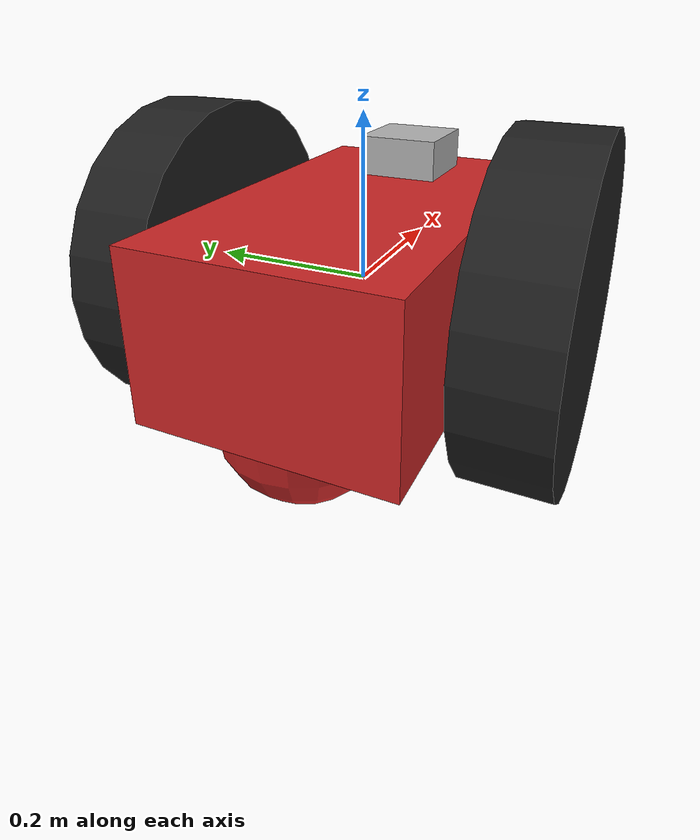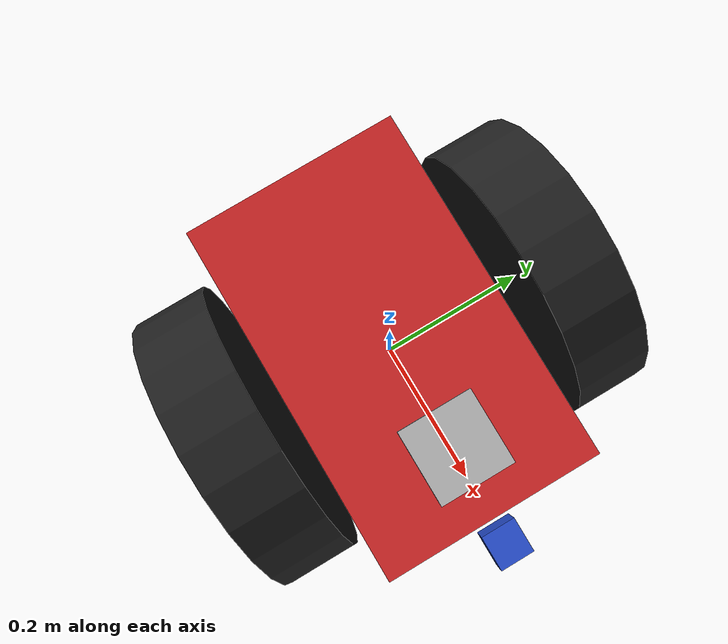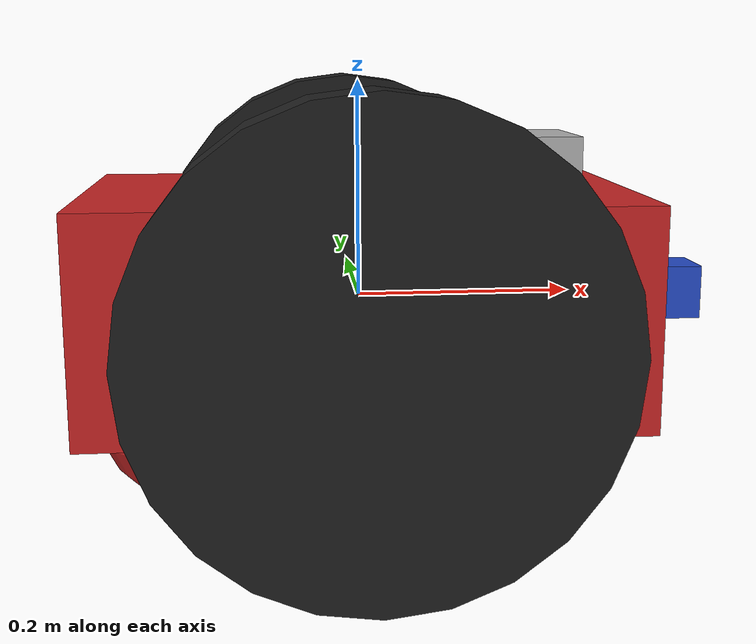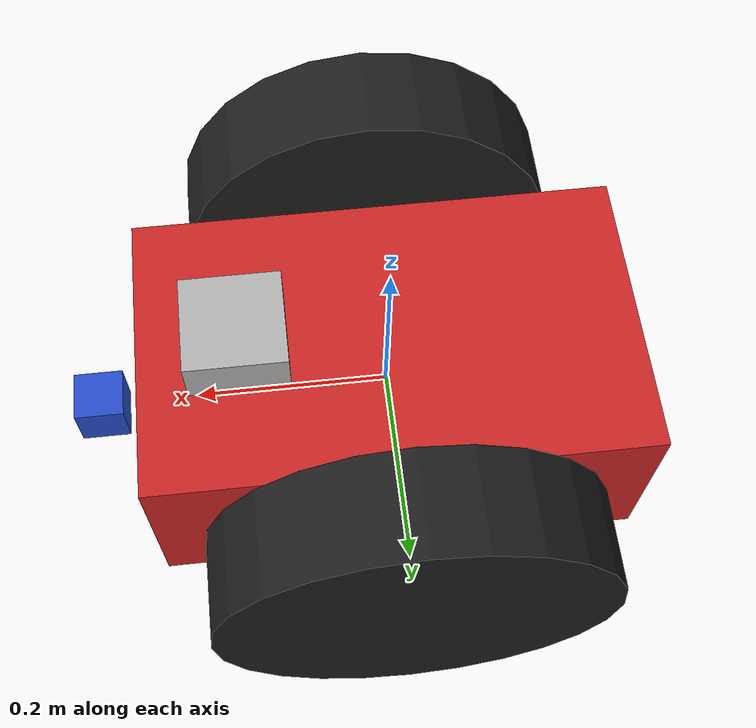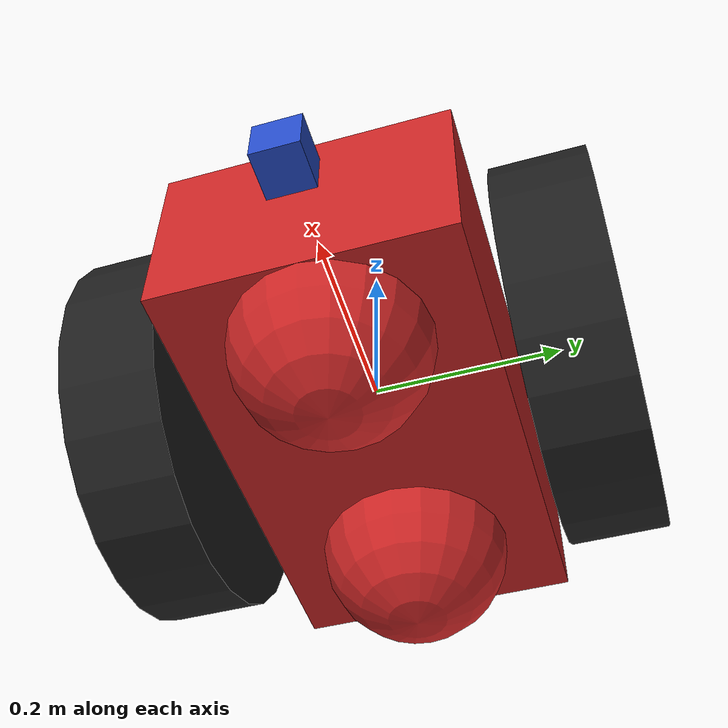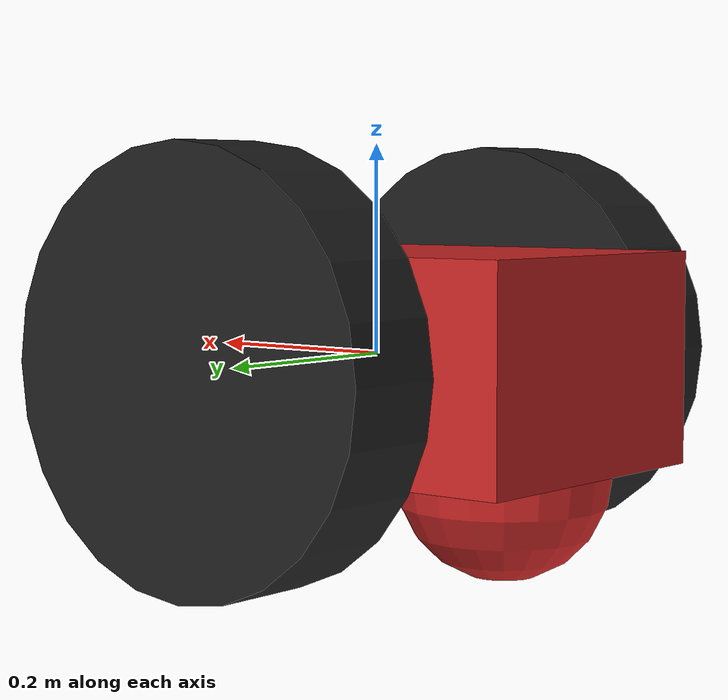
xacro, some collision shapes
<?xml version='1.0'?>

<robot name="my_robot" xmlns:xacro="http://www.ros.org/wiki/xacro">

<xacro:include filename="$(find my_robot)/urdf/my_robot.gazebo" />

  <gazebo reference="left_wheel">
    <material>Gazebo/FlatBlack</material>
  </gazebo>
  <gazebo reference="right_wheel">
    <material>Gazebo/FlatBlack</material>
  </gazebo>
  <gazebo reference="chassis">
    <material>Gazebo/Red</material>
  </gazebo>
  <gazebo reference="camera">
    <material>Gazebo/Blue</material>
  </gazebo>

  <gazebo reference="front_caster">
    <mu1>0.0</mu1>
    <mu2>0.0</mu2>
    <material>Gazebo/RedBright</material>
  </gazebo>

  <gazebo reference="rear_caster">
    <mu1>0.0</mu1>
    <mu2>0.0</mu2>
    <material>Gazebo/RedBright</material>
  </gazebo>

  <link name="robot_footprint"></link>

  <joint name="robot_footprint_joint" type="fixed">
    <origin xyz="0 0 0" rpy="0 0 0" />
    <parent link="robot_footprint"/>
    <child link="chassis" />
  </joint>

  <link name='chassis'>
    <pose>0 0 0.2 0 0 0</pose>

    <inertial>
      <mass value="15.0"/>
      <origin xyz="0.0 0 0" rpy=" 0 0 0"/>
      <inertia
          ixx="0.1" ixy="0" ixz="0"
          iyy="0.1" iyz="0"
          izz="0.1"
      />
    </inertial>

    <collision name='collision'>
      <origin xyz="0 0 0" rpy=" 0 0 0"/>
      <geometry>
        <box size=".5 .3 .2"/>
      </geometry>
    </collision>

    <visual name='chassis_visual'>
      <origin xyz="0 0 0" rpy=" 0 0 0"/>
      <geometry>
        <box size=".5 .3 .2"/>
      </geometry>
    </visual>

  </link>

  <link name="front_caster">

    <inertial>
      <mass value="0.1"/>
      <origin xyz="0 0 0" rpy="0 0 0"/>
      <inertia
	  ixx="1e-6" ixy="0" ixz="0"
	  iyy="1e-6" iyz="0"
	  izz="1e-6"/>
    </inertial>

    <collision name='front_caster_collision'>
      <origin xyz="0 0 0" rpy=" 0 0 0"/>
      <geometry>
        <sphere radius="0.0999"/>
      </geometry>
    </collision>

    <visual name='front_caster_visual'>
      <origin xyz="0 0 0" rpy=" 0 0 0"/>
      <geometry>
        <sphere radius="0.1"/>
      </geometry>
    </visual>
  </link>

  <joint type="fixed" name="front_caster_joint">
    <origin xyz="0.15 0 -0.1" rpy="0 0 0"/>
    <parent link="chassis"/>
    <child link="front_caster"/>
    <axis xyz="0 1 0" rpy="0 0 0"/>
  </joint>

  <link name="rear_caster">

    <inertial>
      <mass value="0.1"/>
      <origin xyz="0 0 0" rpy="0 0 0"/>
      <inertia
	  ixx="1e-6" ixy="0" ixz="0"
	  iyy="1e-6" iyz="0"
	  izz="1e-6"/>
    </inertial>

    <collision name='rear_caster_collision'>
      <origin xyz="0 0 0" rpy=" 0 0 0"/>
      <geometry>
        <sphere radius="0.0999"/>
      </geometry>
    </collision>

    <visual name='rear_caster_visual'>
      <origin xyz="0 0 0" rpy=" 0 0 0"/>
      <geometry>
        <sphere radius="0.1"/>
      </geometry>
    </visual>
  </link>

  <joint type="fixed" name="rear_caster_joint">
    <origin xyz="-0.15 0 -0.1" rpy="0 0 0"/>
    <parent link="chassis"/>
    <child link="rear_caster"/>
    <axis xyz="0 1 0" rpy="0 0 0"/>
  </joint>

  <link name='left_wheel'>
    <inertial>
      <mass value="5"/>
      <origin xyz="0 0 0" rpy="0 1.5707 1.5707"/>
      <inertia
	  ixx="0.1" ixy="0" ixz="0"
	  iyy="0.1" iyz="0"
	  izz="0.1"/>
    </inertial>

    <collision name='left_wheel_collision'>
      <origin xyz="0 0 0" rpy="0 1.5707 1.5707"/>
      <geometry>
	<cylinder radius="0.2" length="0.1"/>
      </geometry>
    </collision>

    <visual name='left_wheel_visual'>
      <origin xyz="0 0 0" rpy="0 1.5707 1.5707"/>
      <geometry>
	<cylinder radius="0.2" length="0.1"/>
      </geometry>
    </visual>
  </link>

  <joint type="continuous" name="left_wheel_hinge">
    <origin xyz="0 0.22 0" rpy="0 0 0"/>
    <child link="left_wheel"/>
    <parent link="chassis"/>
    <axis xyz="0 1 0" rpy="0 0 0"/>
    <limit effort="10000" velocity="1000"/>
    <dynamics damping="0.2" friction="0.2"/>
  </joint>

  <link name='right_wheel'>
    <inertial>
      <mass value="5"/>
      <origin xyz="0 0 0" rpy="0 1.5707 1.5707"/>
      <inertia
	  ixx="0.1" ixy="0" ixz="0"
	  iyy="0.1" iyz="0"
	  izz="0.1"/>
    </inertial>

    <collision name='right_wheel_collision'>
      <origin xyz="0 0 0" rpy="0 1.5707 1.5707"/>
      <geometry>
	<cylinder radius="0.2" length="0.1"/>
      </geometry>
    </collision>

    <visual name='right_wheel_visual'>
      <origin xyz="0 0 0" rpy="0 1.5707 1.5707"/>
      <geometry>
	<cylinder radius="0.2" length="0.1"/>
      </geometry>
    </visual>

  </link>

  <joint type="continuous" name="right_wheel_hinge">
    <origin xyz="0 -0.22 0" rpy="0 0 0"/>
    <child link="right_wheel"/>
    <parent link="chassis"/>
    <axis xyz="0 1 0" rpy="0 0 0"/>
    <limit effort="10000" velocity="1000"/>
    <dynamics damping="0.2" friction="0.2"/>
  </joint>

  <link name='camera'>
    <inertial>
      <mass value="0.1"/>
      <origin xyz="0 0 0" rpy="0 0 0"/>
      <inertia
	  ixx="1e-6" ixy="0" ixz="0"
	  iyy="1e-6" iyz="0"
	  izz="1e-6"/>
    </inertial>

    <collision name='camera_collision'>
      <origin xyz="0 0 0" rpy="0 0 0"/>
      <geometry>
	<box size="0.05 0.05 0.05"/>
      </geometry>
    </collision>

    <visual name='camera_visual'>
      <origin xyz="0 0 0" rpy="0 0 0"/>
      <geometry>
	<box size="0.05 0.05 0.05"/>
      </geometry>
    </visual>

  </link>

  <joint type="fixed" name="camera_joint">
    <origin xyz="0.3 0 0" rpy="0 0 0"/>
    <child link="camera"/>
    <parent link="chassis"/>
    <axis xyz="0 1 0" rpy="0 0 0"/>
  </joint>

  <link name="hokuyo">
    <inertial>
      <mass value="1e-5"/>
      <origin xyz="0 0 0" rpy="0 0 0"/>
      <inertia
	  ixx="1e-6" ixy="0" ixz="0"
	  iyy="1e-6" iyz="0"
	  izz="1e-6"/>
    </inertial>
    <collision>
      <origin xyz="0 0 0" rpy="0 0 0"/>
      <geometry>
	<box size="0.1 0.1 0.1"/>
      </geometry>
    </collision>
    <visual>
      <origin xyz="0 0 0" rpy="0 0 0"/>
      <geometry>
	<mesh filename = "package://my_robot/meshes/hokuyo.dae"/>
      </geometry>
    </visual>
  </link>

  <joint type="fixed" name="hokuyo_joint">
    <origin xyz="0.15 0 0.1" rpy="0 0 0"/>
    <parent link="chassis"/>
    <child link="hokuyo"/>
    <axis xyz="0 1 0" rpy="0 0 0"/>
  </joint>

</robot>
